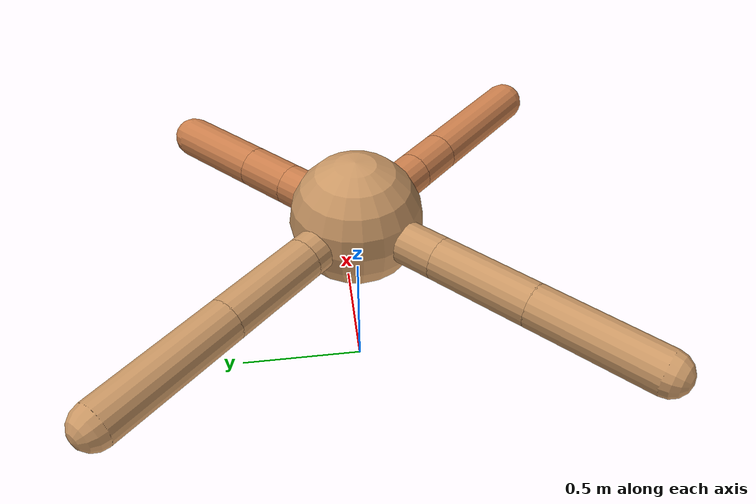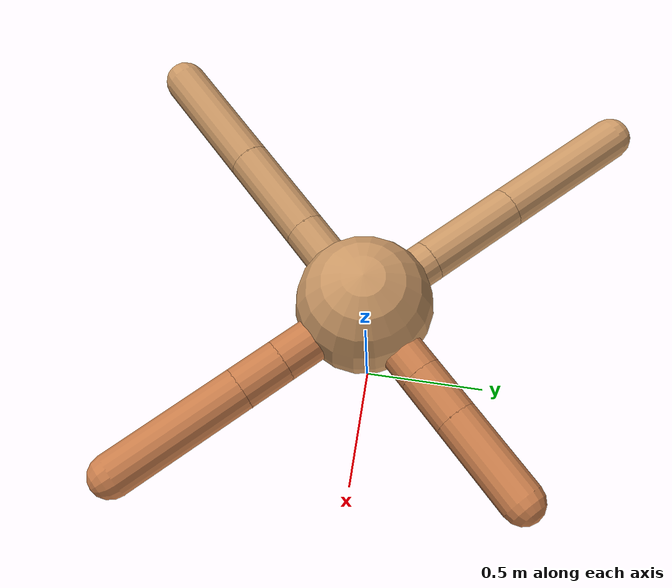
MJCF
<mujoco model="ant">
  <compiler angle="degree" coordinate="local" inertiafromgeom="true" />
  <option integrator="RK4" timestep="0.01" />
  <custom>
    <numeric data="0.0 0.0 0.55 1.0 0.0 0.0 0.0 0.0 1.0 0.0 -1.0 0.0 -1.0 0.0 1.0" name="init_qpos" />
  </custom>
  <default>
    <joint armature="1" damping="1" limited="true" />
    <geom conaffinity="0" condim="3" density="5.0" friction="1.5 0.1 0.1" margin="0.01" rgba="0.8 0.6 0.4 1" />
  </default>
  <worldbody>
    <body name="torso" pos="0 0 0.75">
      <geom name="torso_geom" pos="0 0 0" size="0.25" type="sphere" />

      <body name="front_left_leg" pos="0 0 0">
        <geom fromto="0.0 0.0 0.0 0.2347032872322805 0.2347032872322805 0.0" name="aux_1_geom" size="0.08" type="capsule" rgba=".8 .5 .3 1" />
        <body name="aux_1" pos="0.2347032872322805 0.2347032872322805 0.0">
          <joint axis="0 0 1" name="hip_1" pos="0.0 0.0 0.0" range="-40 40" type="hinge" />
          <geom fromto="0.0 0.0 0.0 0.13782552235485254 0.13782552235485254 0.0" name="left_leg_geom" size="0.08" type="capsule" rgba=".8 .5 .3 1" />
          <body pos="0.13782552235485254 0.13782552235485254 0.0" name="front_left_foot">
            <joint axis="-1 1 0" name="ankle_1" pos="0.0 0.0 0.0" range="30 100" type="hinge" />
            <geom fromto="0.0 0.0 0.0 0.24901617629554354 0.24901617629554354 0.0" name="left_ankle_geom" size="0.08" type="capsule" rgba=".8 .5 .3 1" />
          </body>
        </body>
      </body>
      <body name="front_right_leg" pos="0 0 0">
        <geom fromto="0.0 0.0 0.0 -0.20761001312534014 0.20761001312534014 0.0" name="aux_2_geom" size="0.08" type="capsule" />
        <body name="aux_2" pos="-0.20761001312534014 0.20761001312534014 0.0">
          <joint axis="0 0 1" name="hip_2" pos="0.0 0.0 0.0" range="-40 40" type="hinge" />
          <geom fromto="0.0 0.0 0.0 -0.2645433085796993 0.2645433085796993 0.0" name="right_leg_geom" size="0.08" type="capsule" />
          <body pos="-0.2645433085796993 0.2645433085796993 0.0" name="front_right_foot">
            <joint axis="1 1 0" name="ankle_2" pos="0.0 0.0 0.0" range="-100 -30" type="hinge" />
            <geom fromto="0.0 0.0 0.0 -0.3696215175487321 0.3696215175487321 0.0" name="right_ankle_geom" size="0.08" type="capsule" />
          </body>
        </body>
      </body>
      <body name="left_back_leg" pos="0 0 0">
        <geom fromto="0.0 0.0 0.0 -0.26548866587715847 -0.26548866587715847 0.0" name="aux_3_geom" size="0.08" type="capsule" />
        <body name="aux_3" pos="-0.26548866587715847 -0.26548866587715847 0.0">
          <joint axis="0 0 1" name="hip_3" pos="0.0 0.0 0.0" range="-40 40" type="hinge" />
          <geom fromto="0.0 0.0 0.0 -0.26722207723922864 -0.26722207723922864 0.0" name="back_leg_geom" size="0.08" type="capsule" />
          <body pos="-0.26722207723922864 -0.26722207723922864 0.0" name="left_back_foot">
            <joint axis="-1 1 0" name="ankle_3" pos="0.0 0.0 0.0" range="-100 -30" type="hinge" />
            <geom fromto="0.0 0.0 0.0 -0.3330050064148955 -0.3330050064148955 0.0" name="third_ankle_geom" size="0.08" type="capsule" />
          </body>
        </body>
      </body>
      <body name="right_back_leg" pos="0 0 0">
        <geom fromto="0.0 0.0 0.0 0.2560852718165735 -0.2560852718165735 0.0" name="aux_4_geom" size="0.08" type="capsule" rgba=".8 .5 .3 1" />
        <body name="aux_4" pos="0.2560852718165735 -0.2560852718165735 0.0">
          <joint axis="0 0 1" name="hip_4" pos="0.0 0.0 0.0" range="-40 40" type="hinge" />
          <geom fromto="0.0 0.0 0.0 0.12142508932175591 -0.12142508932175591 0.0" name="rightback_leg_geom" size="0.08" type="capsule" rgba=".8 .5 .3 1" />
          <body pos="0.12142508932175591 -0.12142508932175591 0.0" name="right_back_foot">
            <joint axis="1 1 0" name="ankle_4" pos="0.0 0.0 0.0" range="30 100" type="hinge" />
            <geom fromto="0.0 0.0 0.0 0.3570996186262837 -0.3570996186262837 0.0" name="fourth_ankle_geom" size="0.08" type="capsule" rgba=".8 .5 .3 1" />
          </body>
        </body>
      </body>
    </body>
  </worldbody>
  <actuator>
    <motor ctrllimited="true" ctrlrange="-1.0 1.0" joint="hip_4" gear="150" />
    <motor ctrllimited="true" ctrlrange="-1.0 1.0" joint="ankle_4" gear="150" />
    <motor ctrllimited="true" ctrlrange="-1.0 1.0" joint="hip_1" gear="150" />
    <motor ctrllimited="true" ctrlrange="-1.0 1.0" joint="ankle_1" gear="150" />
    <motor ctrllimited="true" ctrlrange="-1.0 1.0" joint="hip_2" gear="150" />
    <motor ctrllimited="true" ctrlrange="-1.0 1.0" joint="ankle_2" gear="150" />
    <motor ctrllimited="true" ctrlrange="-1.0 1.0" joint="hip_3" gear="150" />
    <motor ctrllimited="true" ctrlrange="-1.0 1.0" joint="ankle_3" gear="150" />
  </actuator>
</mujoco>
